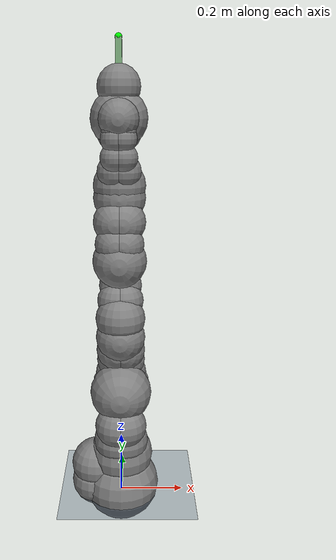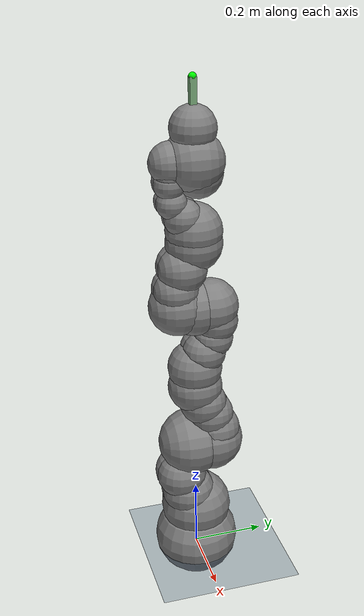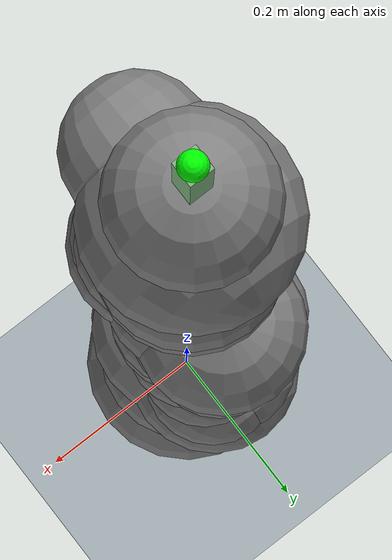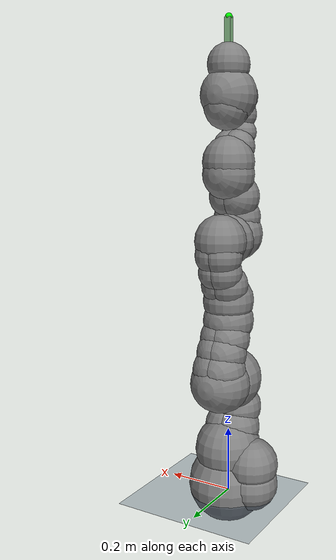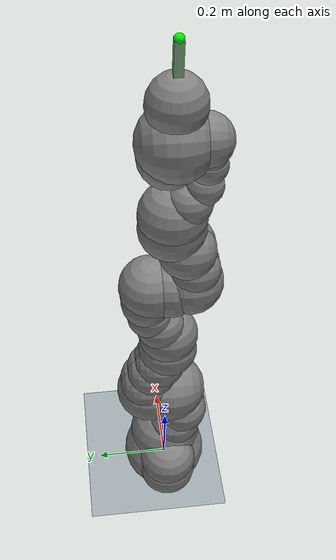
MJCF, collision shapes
<mujoco model="space_assembly">
  <compiler angle="radian" autolimits="true" meshdir="./stls"></compiler>
  <option integrator="implicitfast"></option>
  <visual>
    <headlight ambient="0.3 0.3 0.3" diffuse="0.6 0.6 0.6" specular="0 0 0"></headlight>
    <rgba haze="0.15 0.25 0.35 1"></rgba>
    <global azimuth="-120" elevation="-20"></global>
  </visual>
  <asset>
    <texture builtin="gradient" height="3072" rgb1="0.3 0.5 0.7" rgb2="0 0 0" type="skybox" width="512"></texture>
    <texture builtin="checker" height="300" mark="edge" markrgb="0.8 0.8 0.8" name="groundplane" rgb1="0.2 0.3 0.4" rgb2="0.1 0.2 0.3" type="2d" width="300"></texture>
    <material name="groundplane" reflectance="0.2" texrepeat="5 5" texture="groundplane" texuniform="true"></material>
  </asset>
  <include file="./iiwa_asset.xml"></include>
  <include file="./iiwa_actuator.xml"></include>
  <worldbody>
    <light dir="0 0 -1" directional="true" pos="0 0 1.5"></light>
    <geom material="groundplane" name="floor" size="0 0 0.05" type="plane"></geom>
    <body name="arm" pos="0 0 0">
      <include file="./iiwa_chain.xml"></include>
    </body>
    <body mocap="true" name="target" pos="0.5 0 .6" quat="0 1 0 0">
      <geom conaffinity="0" contype="0" rgba=".6 .3 .3 .0" size=".02 .02 .02" type="box"></geom>
      <site group="3" rgba="0 0 1 1" size="0.01" type="sphere"></site>
    </body>
  </worldbody>
  <sensor>
    <force name="ee_force_sensor" site="sensor"></force>
    <torque name="ee_torque_sensor" site="sensor"></torque>
  </sensor>
</mujoco>

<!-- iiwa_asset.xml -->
<mujocoinclude>

  <default>
    <default class="iiwa">
      <material specular="0.5" shininess="0.25" />
      <joint axis="0 0 1" />
      <general gaintype="fixed" biastype="affine" gainprm="2000" biasprm="0 -2000 -200" />

      <default class="joint1">
        <joint range="-2.96706 2.96706" />
        <general ctrlrange="-2.96706 2.96706" />
        <default class="joint2">
          <joint range="-2.0944 2.0944" />
          <general ctrlrange="-2.0944 2.0944" />
        </default>
      </default>

      <default class="joint3">
        <joint range="-3.05433 3.05433" />
        <general ctrlrange="-3.05433 3.05433" />
      </default>

      <default class="kuka_visual">
        <geom type="mesh" contype="0" conaffinity="0" group="2" material="kuka_gray" />
      </default>

      <default class="kuka_collision">
        <geom group="3" />
      </default>

      <site size="0.001" rgba="1 0 0 1" group="4" />
    </default>
  </default>

  <asset>
    <material class="iiwa" name="kuka_gray" rgba="0.4 0.4 0.4 1" />
    <material class="iiwa" name="kuka_light_gray" rgba="0.6 0.6 0.6 1" />
    <material class="iiwa" name="kuka_black" rgba="0 0 0 1" />
    <material class="iiwa" name="kuka_orange" rgba="1 0.423529 0.0392157 1" />

    <mesh file="link_0.obj" />
    <mesh file="link_1.obj" />
    <mesh file="link_2_orange.obj" />
    <mesh file="link_2_grey.obj" />
    <mesh file="link_3.obj" />
    <mesh file="band.obj" />
    <mesh file="kuka.obj" />
    <mesh file="link_4_orange.obj" />
    <mesh file="link_4_grey.obj" />
    <mesh file="link_5.obj" />
    <mesh file="link_6_orange.obj" />
    <mesh file="link_6_grey.obj" />
    <mesh file="link_7.obj" />
  </asset>

  <contact>
    <exclude body1="kuka_base" body2="link1" />
  </contact>

</mujocoinclude>

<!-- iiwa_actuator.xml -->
<mujocoinclude>
    <actuator>

        <motor name="actuator1" joint="kuka_joint1" ctrlrange="-176.0 176.0"/>
        <motor name="actuator2" joint="kuka_joint2" ctrlrange="-176.0 176.0"/>
        <motor name="actuator3" joint="kuka_joint3" ctrlrange="-110.0 110.0"/>
        <motor name="actuator4" joint="kuka_joint4" ctrlrange="-110.0 110.0"/>
        <motor name="actuator5" joint="kuka_joint5" ctrlrange="-110 110"/>
        <motor name="actuator6" joint="kuka_joint6" ctrlrange="-40 40"/>
        <motor name="actuator7" joint="kuka_joint7" ctrlrange="-40 40"/>

    </actuator>
</mujocoinclude>

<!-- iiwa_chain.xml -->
<mujocoinclude>
  <body childclass="iiwa" name="kuka_base">
    <inertial diaginertia="0.05 0.06 0.03" mass="5" pos="-0.1 0 0.07"></inertial>
    <geom class="kuka_visual" mesh="link_0"></geom>
    <geom class="kuka_collision" name="kuka_base_geom1" pos="0 0 0.03" size="0.12"></geom>
    <geom class="kuka_collision" pos="-0.08 0 0.103" size="0.08"></geom>
    <geom class="kuka_collision" pos="-0.08 0 0.04" size="0.08"></geom>
    <geom class="kuka_collision" pos="0 0 0.14" size="0.1"></geom>
    <body name="link1" pos="0 0 0.1575">
      <inertial diaginertia="0.0333 0.033 0.0123" mass="5.76" pos="0 -0.03 0.12"></inertial>
      <joint class="joint1" name="kuka_joint1"></joint>
      <geom class="kuka_visual" mesh="link_1"></geom>
      <geom class="kuka_collision" pos="0 0 -0.0005" size="0.08"></geom>
      <geom class="kuka_collision" pos="0.01 -0.025 0.0425" size="0.075"></geom>
      <geom class="kuka_collision" pos="-0.01 -0.025 0.0425" size="0.075"></geom>
      <geom class="kuka_collision" pos="0.01 -0.045 0.1025" size="0.07"></geom>
      <geom class="kuka_collision" pos="-0.01 -0.045 0.1025" size="0.07"></geom>
      <body name="link2" pos="0 0 0.2025" quat="0 0 1 1">
        <inertial diaginertia="0.0305 0.0304 0.011" mass="6.35" pos="0.0003 0.059 0.042" quat="0 0 1 1"></inertial>
        <joint class="joint2" name="kuka_joint2"></joint>
        <geom class="kuka_visual" material="kuka_orange" mesh="link_2_orange"></geom>
        <geom class="kuka_visual" mesh="link_2_grey"></geom>
        <geom class="kuka_collision" pos="0 0 -0.01" size="0.095"></geom>
        <geom class="kuka_collision" pos="0 0 0.045" size="0.09"></geom>
        <geom class="kuka_collision" pos="-0.01 0.04 0.054" size="0.07"></geom>
        <geom class="kuka_collision" pos="-0.01 0.09 0.04" size="0.065"></geom>
        <geom class="kuka_collision" pos="-0.01 0.13 0.02" size="0.065"></geom>
        <geom class="kuka_collision" pos="0.01 0.04 0.054" size="0.07"></geom>
        <geom class="kuka_collision" pos="0.01 0.09 0.04" size="0.065"></geom>
        <geom class="kuka_collision" pos="0.01 0.13 0.02" size="0.065"></geom>
        <geom class="kuka_collision" pos="0 0.18 0" size="0.075"></geom>
        <body name="link3" pos="0 0.2045 0" quat="0 0 1 1">
          <inertial diaginertia="0.025 0.0238 0.0076" mass="3.5" pos="0 0.03 0.13"></inertial>
          <joint class="joint1" name="kuka_joint3"></joint>
          <geom class="kuka_visual" mesh="link_3"></geom>
          <geom class="kuka_visual" material="kuka_light_gray" mesh="band"></geom>
          <geom class="kuka_visual" material="kuka_black" mesh="kuka"></geom>
          <geom class="kuka_collision" pos="0 0 0.0355" size="0.075"></geom>
          <geom class="kuka_collision" pos="0.01 0.023 0.0855" size="0.06"></geom>
          <geom class="kuka_collision" pos="0.01 0.048 0.1255" size="0.055"></geom>
          <geom class="kuka_collision" pos="0.01 0.056 0.1755" size="0.06"></geom>
          <geom class="kuka_collision" pos="-0.01 0.023 0.0855" size="0.06"></geom>
          <geom class="kuka_collision" pos="-0.01 0.048 0.1255" size="0.055"></geom>
          <geom class="kuka_collision" pos="-0.01 0.056 0.1755" size="0.06"></geom>
          <geom class="kuka_collision" pos="0 0.045 0.2155" size="0.075"></geom>
          <geom class="kuka_collision" pos="0 0 0.2155" size="0.075"></geom>
          <body name="link4" pos="0 0 0.2155" quat="1 1 0 0">
            <inertial diaginertia="0.017 0.0164 0.006" mass="3.5" pos="0 0.067 0.034" quat="1 1 0 0"></inertial>
            <joint class="joint2" name="kuka_joint4"></joint>
            <geom class="kuka_visual" material="kuka_orange" mesh="link_4_orange"></geom>
            <geom class="kuka_visual" mesh="link_4_grey"></geom>
            <geom class="kuka_collision" pos="0 0.01 0.046" size="0.078"></geom>
            <geom class="kuka_collision" pos="0.01 0.06 0.052" size="0.06"></geom>
            <geom class="kuka_collision" pos="0.01 0.12 0.034" size="0.065"></geom>
            <geom class="kuka_collision" pos="-0.01 0.06 0.052" size="0.06"></geom>
            <geom class="kuka_collision" pos="-0.01 0.12 0.034" size="0.065"></geom>
            <geom class="kuka_collision" pos="0 0.184 0" size="0.075"></geom>
            <body name="link5" pos="0 0.1845 0" quat="0 0 1 1">
              <inertial diaginertia="0.01 0.0087 0.00449" mass="3.5" pos="0.0001 0.021 0.076"></inertial>
              <joint class="joint1" name="kuka_joint5"></joint>
              <geom class="kuka_visual" mesh="link_5"></geom>
              <geom class="kuka_visual" material="kuka_light_gray" mesh="band"></geom>
              <geom class="kuka_visual" material="kuka_black" mesh="kuka"></geom>
              <geom class="kuka_collision" pos="0 0 0.0335" size="0.075"></geom>
              <geom class="kuka_collision" pos="-0.012 0.031 0.0755" size="0.05"></geom>
              <geom class="kuka_collision" pos="0.012 0.031 0.0755" size="0.05"></geom>
              <geom class="kuka_collision" pos="-0.012 0.06 0.1155" size="0.04"></geom>
              <geom class="kuka_collision" pos="0.012 0.06 0.1155" size="0.04"></geom>
              <geom class="kuka_collision" pos="-0.01 0.065 0.1655" size="0.04"></geom>
              <geom class="kuka_collision" pos="0.01 0.065 0.1655" size="0.04"></geom>
              <geom class="kuka_collision" pos="-0.012 0.065 0.1855" size="0.035"></geom>
              <geom class="kuka_collision" pos="0.012 0.065 0.1855" size="0.035"></geom>
              <body name="link6" pos="0 0 0.2155" quat="1 1 0 0">
                <inertial diaginertia="0.0049 0.0047 0.0036" mass="1.8" pos="0 0.0006 0.0004" quat="1 1 0 0"></inertial>
                <joint class="joint2" name="kuka_joint6"></joint>
                <geom class="kuka_visual" material="kuka_orange" mesh="link_6_orange"></geom>
                <geom class="kuka_visual" mesh="link_6_grey"></geom>
                <geom class="kuka_collision" pos="0 0 -0.059" size="0.055"></geom>
                <geom class="kuka_collision" pos="0 -0.03 0.011" size="0.065"></geom>
                <geom class="kuka_collision" size="0.08"></geom>
                <body name="link7" pos="0 0.081 0" quat="0 0 1 1">
                  <inertial diaginertia="0.001 0.001 0.001" mass="1.2" pos="0 0 0.02"></inertial>
                  <joint class="joint3" name="kuka_joint7"></joint>
                  <geom class="kuka_visual" mesh="link_7"></geom>
                  <geom class="kuka_collision" pos="0 0 0.001" size="0.06"></geom>
                  <body name="attachment" pos="0 0.0 0.045" quat="1 0 0 0">
                    <site group="3" name="ee" rgba="0 1 0 1" size="0.01"></site>
                  </body>
                  <body name="box_eef" pos="0 0.0 0.045" quat="1 0 0 0">
                    <geom condim="6" friction="1" mass="0.01" name="box_eef_geom" pos="0 0 0.04" rgba="0.5 0.7 0.5 1" size="0.009 0.009 0.04" type="box"></geom>
                    <body name="dummy body" pos="0 0 0.08">
                      <inertial diaginertia="0 0 0" mass="0.0001" pos="0 0 0"></inertial>
                      <geom rgba="0 1 0 0" size="0.001" type="sphere"></geom>
                      <site group="1" name="sensor" quat="1 0 0 0" rgba="0 1 0 1" size="0.01"></site>
                    </body>
                  </body>
                </body>
              </body>
            </body>
          </body>
        </body>
      </body>
    </body>
  </body>
</mujocoinclude>
